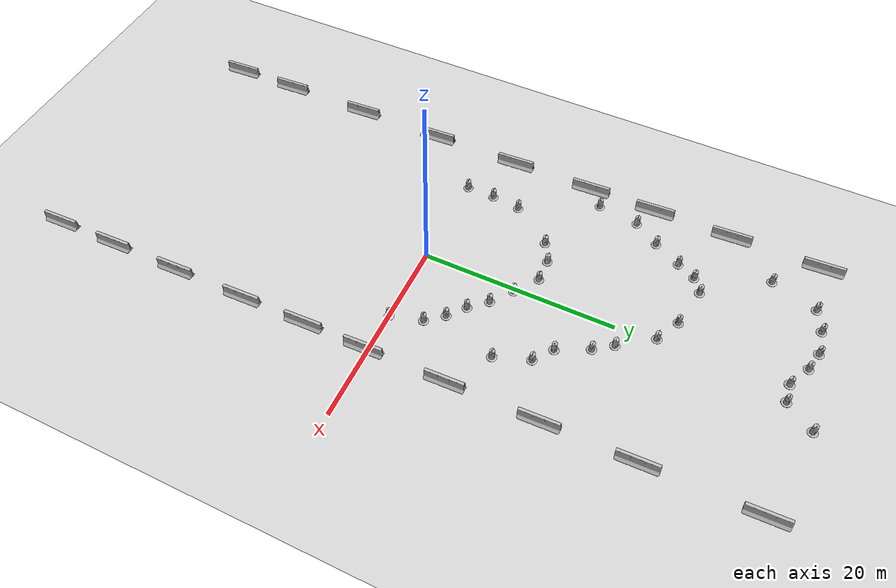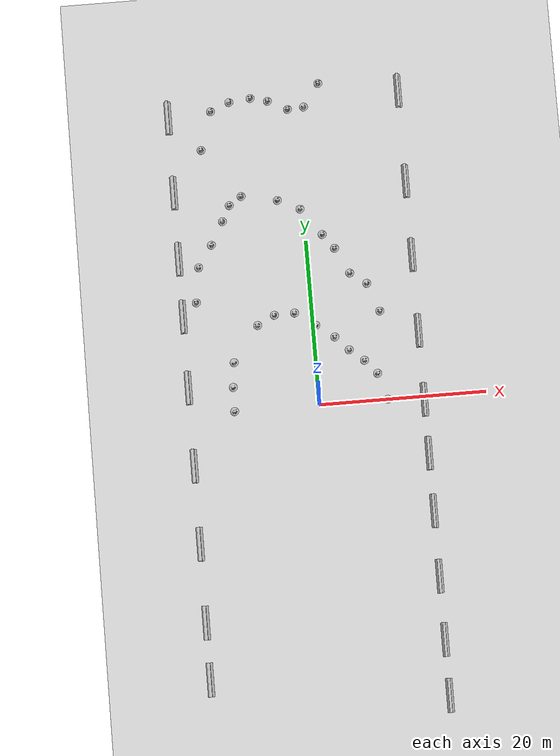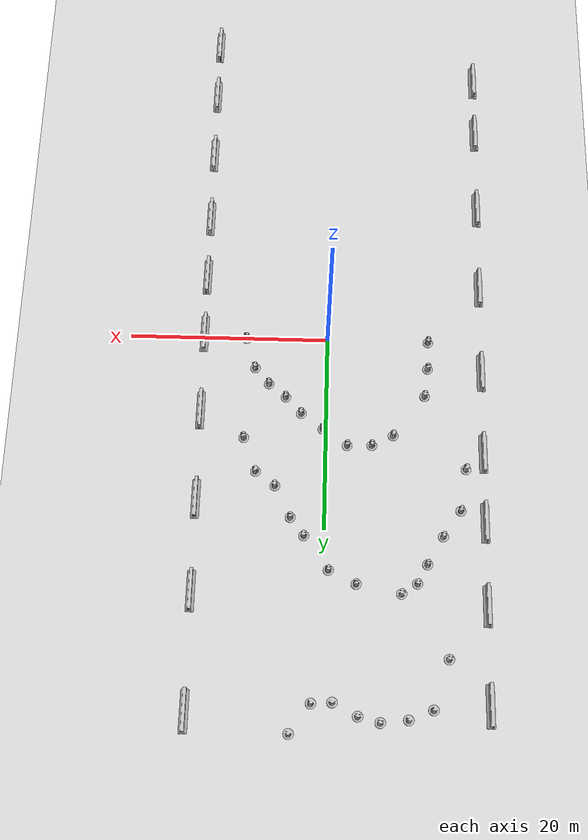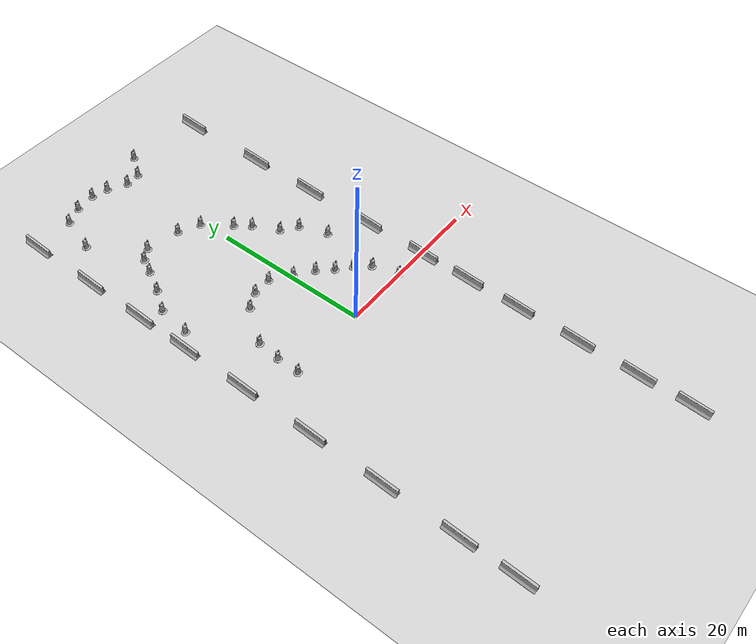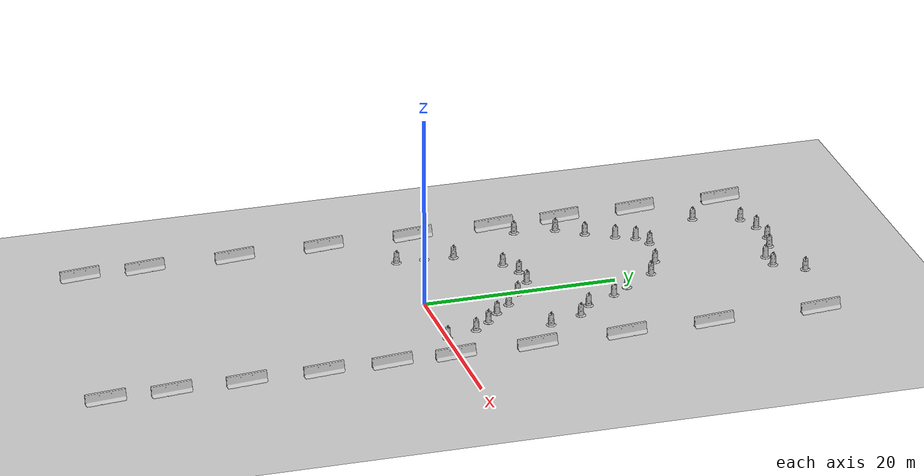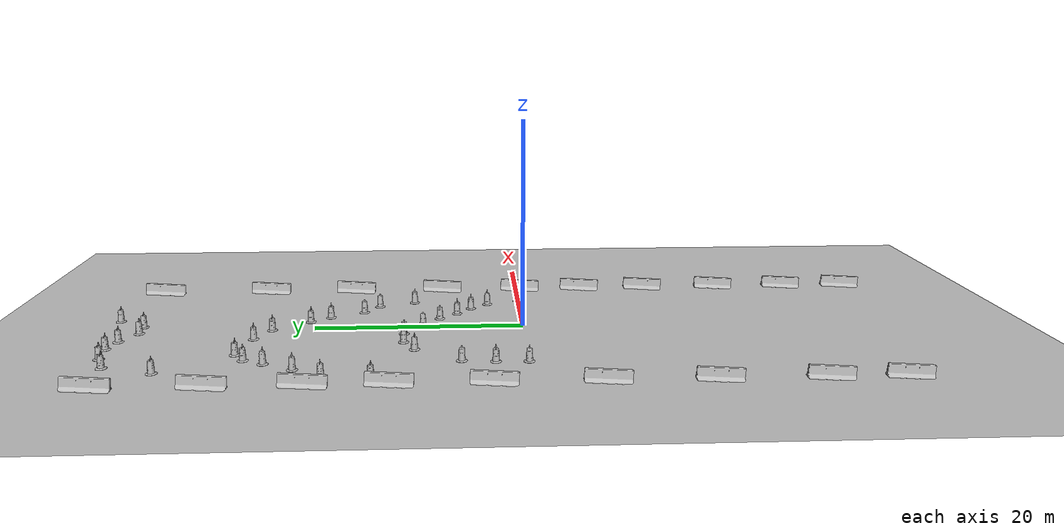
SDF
<sdf version="1.6">
 <world name="default">
  <light name="sun" type="directional">
   <pose>0 0 10 0 -0 0</pose>
   <diffuse>0.8 0.8 0.8 1</diffuse>
   <specular>0.2 0.2 0.2 1</specular>
   <attenuation>
    <range>1000</range>
    <constant>0.9</constant>
    <linear>0.01</linear>
    <quadratic>0.001</quadratic>
   </attenuation>
   <direction>-0.5 0.1 -0.9</direction>
  </light>
  <model name="ground_plane">
   <static>1</static>
   <link name="link">
    <collision name="collision">
     <geometry><plane><normal>0 0 1</normal><size>100 100</size></plane></geometry>
     <surface><friction><ode><mu>100</mu><mu2>50</mu2></ode></friction></surface>
    </collision>
    <visual name="visual">
     <cast_shadows>0</cast_shadows>
     <geometry><plane><normal>0 0 1</normal><size>100 100</size></plane></geometry>
     <material>
      <script><uri>file://media/materials/scripts/gazebo.material</uri><name>Gazebo/Grey</name></script>
     </material>
    </visual>
    <velocity_decay><linear>0</linear><angular>0</angular></velocity_decay>
   </link>
  </model>
  <physics name="default_physics" default="0" type="ode">
   <max_step_size>0.001</max_step_size>
   <real_time_factor>1</real_time_factor>
   <real_time_update_rate>1000</real_time_update_rate>
  </physics>
  <scene><ambient>0.4 0.4 0.4 1</ambient><background>0.7 0.7 0.7 1</background><shadows>1</shadows></scene>
  <spherical_coordinates>
   <surface_model>EARTH_WGS84</surface_model>
   <latitude_deg>0</latitude_deg>
   <longitude_deg>0</longitude_deg>
   <elevation>0</elevation>
   <heading_deg>0</heading_deg>
  </spherical_coordinates>
  <gravity>0 0 -9.8</gravity>
  <magnetic_field>6e-06 2.3e-05 -4.2e-05</magnetic_field>
  <atmosphere type="adiabatic"/>
  <model name="Construction Barrel">
   <link name="link">
    <inertial>
     <pose>0 0 0.4 0 -0 0</pose>
     <mass>500</mass>
     <inertia><ixx>51.2096</ixx><iyy>51.2096</iyy><izz>25</izz><ixy>0</ixy><ixz>0</ixz><iyz>0</iyz></inertia>
    </inertial>
    <collision name="collision">
     <geometry>
      <mesh><uri>model://construction_barrel/meshes/construction_barrel.dae</uri><scale>1 1 1</scale></mesh>
     </geometry>
    </collision>
    <visual name="visual">
     <geometry>
      <mesh><uri>model://construction_barrel/meshes/construction_barrel.dae</uri><scale>1 1 1</scale></mesh>
     </geometry>
    </visual>
   </link>
   <pose>8.20489 0.018212 -2e-06 -0 7e-06 -6.6e-05</pose>
  </model>
  <model name="jersey_barrier">
   <static>1</static>
   <link name="link">
    <visual name="visual">
     <geometry>
      <mesh><uri>model://jersey_barrier/meshes/jersey_barrier.dae</uri><scale>1 1 1</scale></mesh>
     </geometry>
    </visual>
    <collision name="upright">
     <pose>0 0 0.5715 0 -0 0</pose>
     <geometry><box><size>4.06542 0.3063 1.143</size></box></geometry>
    </collision>
    <collision name="base">
     <pose>0 0 0.032258 0 -0 0</pose>
     <geometry><box><size>4.06542 0.8107 0.064516</size></box></geometry>
    </collision>
    <collision name="base2">
     <pose>0 0 0.1 0 -0 0</pose>
     <geometry><box><size>4.06542 0.65 0.1</size></box></geometry>
    </collision>
    <collision name="base3">
     <pose>0 0 0.2 0 -0 0</pose>
     <geometry><box><size>4.06542 0.5 0.1</size></box></geometry>
    </collision>
    <collision name="left-angle">
     <pose>0 -0.224 0.2401 0.9 -0 0</pose>
     <geometry><box><size>4.06542 0.5 0.064516</size></box></geometry>
    </collision>
    <collision name="right-angle">
     <pose>0 0.224 0.2401 -0.9 0 0</pose>
     <geometry><box><size>4.06542 0.5 0.064516</size></box></geometry>
    </collision>
   </link>
   <pose>12.5627 -0.390061 0 -0.030847 -0.060855 1.56726</pose>
  </model>
  <model name="jersey_barrier_clone">
   <static>1</static>
   <link name="link">
    <visual name="visual">
     <geometry>
      <mesh><uri>model://jersey_barrier/meshes/jersey_barrier.dae</uri><scale>1 1 1</scale></mesh>
     </geometry>
    </visual>
    <collision name="upright">
     <pose>0 0 0.5715 0 -0 0</pose>
     <geometry><box><size>4.06542 0.3063 1.143</size></box></geometry>
    </collision>
    <collision name="base">
     <pose>0 0 0.032258 0 -0 0</pose>
     <geometry><box><size>4.06542 0.8107 0.064516</size></box></geometry>
    </collision>
    <collision name="base2">
     <pose>0 0 0.1 0 -0 0</pose>
     <geometry><box><size>4.06542 0.65 0.1</size></box></geometry>
    </collision>
    <collision name="base3">
     <pose>0 0 0.2 0 -0 0</pose>
     <geometry><box><size>4.06542 0.5 0.1</size></box></geometry>
    </collision>
    <collision name="left-angle">
     <pose>0 -0.224 0.2401 0.9 -0 0</pose>
     <geometry><box><size>4.06542 0.5 0.064516</size></box></geometry>
    </collision>
    <collision name="right-angle">
     <pose>0 0.224 0.2401 -0.9 0 0</pose>
     <geometry><box><size>4.06542 0.5 0.064516</size></box></geometry>
    </collision>
   </link>
   <pose>12.5627 -6.88089 0 -0.030847 -0.060855 1.56726</pose>
  </model>
  <model name="jersey_barrier_clone_0">
   <static>1</static>
   <link name="link">
    <visual name="visual">
     <geometry>
      <mesh><uri>model://jersey_barrier/meshes/jersey_barrier.dae</uri><scale>1 1 1</scale></mesh>
     </geometry>
    </visual>
    <collision name="upright">
     <pose>0 0 0.5715 0 -0 0</pose>
     <geometry><box><size>4.06542 0.3063 1.143</size></box></geometry>
    </collision>
    <collision name="base">
     <pose>0 0 0.032258 0 -0 0</pose>
     <geometry><box><size>4.06542 0.8107 0.064516</size></box></geometry>
    </collision>
    <collision name="base2">
     <pose>0 0 0.1 0 -0 0</pose>
     <geometry><box><size>4.06542 0.65 0.1</size></box></geometry>
    </collision>
    <collision name="base3">
     <pose>0 0 0.2 0 -0 0</pose>
     <geometry><box><size>4.06542 0.5 0.1</size></box></geometry>
    </collision>
    <collision name="left-angle">
     <pose>0 -0.224 0.2401 0.9 -0 0</pose>
     <geometry><box><size>4.06542 0.5 0.064516</size></box></geometry>
    </collision>
    <collision name="right-angle">
     <pose>0 0.224 0.2401 -0.9 0 0</pose>
     <geometry><box><size>4.06542 0.5 0.064516</size></box></geometry>
    </collision>
   </link>
   <pose>12.5627 -13.8164 0 -0.030847 -0.060855 1.56726</pose>
  </model>
  <model name="jersey_barrier_clone_1">
   <static>1</static>
   <link name="link">
    <visual name="visual">
     <geometry>
      <mesh><uri>model://jersey_barrier/meshes/jersey_barrier.dae</uri><scale>1 1 1</scale></mesh>
     </geometry>
    </visual>
    <collision name="upright">
     <pose>0 0 0.5715 0 -0 0</pose>
     <geometry><box><size>4.06542 0.3063 1.143</size></box></geometry>
    </collision>
    <collision name="base">
     <pose>0 0 0.032258 0 -0 0</pose>
     <geometry><box><size>4.06542 0.8107 0.064516</size></box></geometry>
    </collision>
    <collision name="base2">
     <pose>0 0 0.1 0 -0 0</pose>
     <geometry><box><size>4.06542 0.65 0.1</size></box></geometry>
    </collision>
    <collision name="base3">
     <pose>0 0 0.2 0 -0 0</pose>
     <geometry><box><size>4.06542 0.5 0.1</size></box></geometry>
    </collision>
    <collision name="left-angle">
     <pose>0 -0.224 0.2401 0.9 -0 0</pose>
     <geometry><box><size>4.06542 0.5 0.064516</size></box></geometry>
    </collision>
    <collision name="right-angle">
     <pose>0 0.224 0.2401 -0.9 0 0</pose>
     <geometry><box><size>4.06542 0.5 0.064516</size></box></geometry>
    </collision>
   </link>
   <pose>12.5627 8.00462 0 -0.030847 -0.060855 1.56726</pose>
  </model>
  <model name="jersey_barrier_clone_2">
   <static>1</static>
   <link name="link">
    <visual name="visual">
     <geometry>
      <mesh><uri>model://jersey_barrier/meshes/jersey_barrier.dae</uri><scale>1 1 1</scale></mesh>
     </geometry>
    </visual>
    <collision name="upright">
     <pose>0 0 0.5715 0 -0 0</pose>
     <geometry><box><size>4.06542 0.3063 1.143</size></box></geometry>
    </collision>
    <collision name="base">
     <pose>0 0 0.032258 0 -0 0</pose>
     <geometry><box><size>4.06542 0.8107 0.064516</size></box></geometry>
    </collision>
    <collision name="base2">
     <pose>0 0 0.1 0 -0 0</pose>
     <geometry><box><size>4.06542 0.65 0.1</size></box></geometry>
    </collision>
    <collision name="base3">
     <pose>0 0 0.2 0 -0 0</pose>
     <geometry><box><size>4.06542 0.5 0.1</size></box></geometry>
    </collision>
    <collision name="left-angle">
     <pose>0 -0.224 0.2401 0.9 -0 0</pose>
     <geometry><box><size>4.06542 0.5 0.064516</size></box></geometry>
    </collision>
    <collision name="right-angle">
     <pose>0 0.224 0.2401 -0.9 0 0</pose>
     <geometry><box><size>4.06542 0.5 0.064516</size></box></geometry>
    </collision>
   </link>
   <pose>12.5627 17.2633 0 -0.030847 -0.060855 1.56726</pose>
  </model>
  <model name="jersey_barrier_clone_3">
   <static>1</static>
   <link name="link">
    <visual name="visual">
     <geometry>
      <mesh><uri>model://jersey_barrier/meshes/jersey_barrier.dae</uri><scale>1 1 1</scale></mesh>
     </geometry>
    </visual>
    <collision name="upright">
     <pose>0 0 0.5715 0 -0 0</pose>
     <geometry><box><size>4.06542 0.3063 1.143</size></box></geometry>
    </collision>
    <collision name="base">
     <pose>0 0 0.032258 0 -0 0</pose>
     <geometry><box><size>4.06542 0.8107 0.064516</size></box></geometry>
    </collision>
    <collision name="base2">
     <pose>0 0 0.1 0 -0 0</pose>
     <geometry><box><size>4.06542 0.65 0.1</size></box></geometry>
    </collision>
    <collision name="base3">
     <pose>0 0 0.2 0 -0 0</pose>
     <geometry><box><size>4.06542 0.5 0.1</size></box></geometry>
    </collision>
    <collision name="left-angle">
     <pose>0 -0.224 0.2401 0.9 -0 0</pose>
     <geometry><box><size>4.06542 0.5 0.064516</size></box></geometry>
    </collision>
    <collision name="right-angle">
     <pose>0 0.224 0.2401 -0.9 0 0</pose>
     <geometry><box><size>4.06542 0.5 0.064516</size></box></geometry>
    </collision>
   </link>
   <pose>12.5627 26.3794 0 -0.030847 -0.060855 1.56726</pose>
  </model>
  <model name="jersey_barrier_clone_4">
   <static>1</static>
   <link name="link">
    <visual name="visual">
     <geometry>
      <mesh><uri>model://jersey_barrier/meshes/jersey_barrier.dae</uri><scale>1 1 1</scale></mesh>
     </geometry>
    </visual>
    <collision name="upright">
     <pose>0 0 0.5715 0 -0 0</pose>
     <geometry><box><size>4.06542 0.3063 1.143</size></box></geometry>
    </collision>
    <collision name="base">
     <pose>0 0 0.032258 0 -0 0</pose>
     <geometry><box><size>4.06542 0.8107 0.064516</size></box></geometry>
    </collision>
    <collision name="base2">
     <pose>0 0 0.1 0 -0 0</pose>
     <geometry><box><size>4.06542 0.65 0.1</size></box></geometry>
    </collision>
    <collision name="base3">
     <pose>0 0 0.2 0 -0 0</pose>
     <geometry><box><size>4.06542 0.5 0.1</size></box></geometry>
    </collision>
    <collision name="left-angle">
     <pose>0 -0.224 0.2401 0.9 -0 0</pose>
     <geometry><box><size>4.06542 0.5 0.064516</size></box></geometry>
    </collision>
    <collision name="right-angle">
     <pose>0 0.224 0.2401 -0.9 0 0</pose>
     <geometry><box><size>4.06542 0.5 0.064516</size></box></geometry>
    </collision>
   </link>
   <pose>12.5627 37.5956 0 -0.030847 -0.060855 1.56726</pose>
  </model>
  <model name="jersey_barrier_clone_5">
   <static>1</static>
   <link name="link">
    <visual name="visual">
     <geometry>
      <mesh><uri>model://jersey_barrier/meshes/jersey_barrier.dae</uri><scale>1 1 1</scale></mesh>
     </geometry>
    </visual>
    <collision name="upright">
     <pose>0 0 0.5715 0 -0 0</pose>
     <geometry><box><size>4.06542 0.3063 1.143</size></box></geometry>
    </collision>
    <collision name="base">
     <pose>0 0 0.032258 0 -0 0</pose>
     <geometry><box><size>4.06542 0.8107 0.064516</size></box></geometry>
    </collision>
    <collision name="base2">
     <pose>0 0 0.1 0 -0 0</pose>
     <geometry><box><size>4.06542 0.65 0.1</size></box></geometry>
    </collision>
    <collision name="base3">
     <pose>0 0 0.2 0 -0 0</pose>
     <geometry><box><size>4.06542 0.5 0.1</size></box></geometry>
    </collision>
    <collision name="left-angle">
     <pose>0 -0.224 0.2401 0.9 -0 0</pose>
     <geometry><box><size>4.06542 0.5 0.064516</size></box></geometry>
    </collision>
    <collision name="right-angle">
     <pose>0 0.224 0.2401 -0.9 0 0</pose>
     <geometry><box><size>4.06542 0.5 0.064516</size></box></geometry>
    </collision>
   </link>
   <pose>12.5627 -21.6319 0 -0.030847 -0.060855 1.56726</pose>
  </model>
  <model name="jersey_barrier_clone_6">
   <static>1</static>
   <link name="link">
    <visual name="visual">
     <geometry>
      <mesh><uri>model://jersey_barrier/meshes/jersey_barrier.dae</uri><scale>1 1 1</scale></mesh>
     </geometry>
    </visual>
    <collision name="upright">
     <pose>0 0 0.5715 0 -0 0</pose>
     <geometry><box><size>4.06542 0.3063 1.143</size></box></geometry>
    </collision>
    <collision name="base">
     <pose>0 0 0.032258 0 -0 0</pose>
     <geometry><box><size>4.06542 0.8107 0.064516</size></box></geometry>
    </collision>
    <collision name="base2">
     <pose>0 0 0.1 0 -0 0</pose>
     <geometry><box><size>4.06542 0.65 0.1</size></box></geometry>
    </collision>
    <collision name="base3">
     <pose>0 0 0.2 0 -0 0</pose>
     <geometry><box><size>4.06542 0.5 0.1</size></box></geometry>
    </collision>
    <collision name="left-angle">
     <pose>0 -0.224 0.2401 0.9 -0 0</pose>
     <geometry><box><size>4.06542 0.5 0.064516</size></box></geometry>
    </collision>
    <collision name="right-angle">
     <pose>0 0.224 0.2401 -0.9 0 0</pose>
     <geometry><box><size>4.06542 0.5 0.064516</size></box></geometry>
    </collision>
   </link>
   <pose>12.5627 -29.1716 0 -0.030847 -0.060855 1.56726</pose>
  </model>
  <model name="jersey_barrier_clone_7">
   <static>1</static>
   <link name="link">
    <visual name="visual">
     <geometry>
      <mesh><uri>model://jersey_barrier/meshes/jersey_barrier.dae</uri><scale>1 1 1</scale></mesh>
     </geometry>
    </visual>
    <collision name="upright">
     <pose>0 0 0.5715 0 -0 0</pose>
     <geometry><box><size>4.06542 0.3063 1.143</size></box></geometry>
    </collision>
    <collision name="base">
     <pose>0 0 0.032258 0 -0 0</pose>
     <geometry><box><size>4.06542 0.8107 0.064516</size></box></geometry>
    </collision>
    <collision name="base2">
     <pose>0 0 0.1 0 -0 0</pose>
     <geometry><box><size>4.06542 0.65 0.1</size></box></geometry>
    </collision>
    <collision name="base3">
     <pose>0 0 0.2 0 -0 0</pose>
     <geometry><box><size>4.06542 0.5 0.1</size></box></geometry>
    </collision>
    <collision name="left-angle">
     <pose>0 -0.224 0.2401 0.9 -0 0</pose>
     <geometry><box><size>4.06542 0.5 0.064516</size></box></geometry>
    </collision>
    <collision name="right-angle">
     <pose>0 0.224 0.2401 -0.9 0 0</pose>
     <geometry><box><size>4.06542 0.5 0.064516</size></box></geometry>
    </collision>
   </link>
   <pose>12.5627 -35.7766 0 -0.030847 -0.060855 1.56726</pose>
  </model>
  <model name="jersey_barrier_clone_7_clone">
   <static>1</static>
   <link name="link">
    <visual name="visual">
     <geometry>
      <mesh><uri>model://jersey_barrier/meshes/jersey_barrier.dae</uri><scale>1 1 1</scale></mesh>
     </geometry>
    </visual>
    <collision name="upright">
     <pose>0 0 0.5715 0 -0 0</pose>
     <geometry><box><size>4.06542 0.3063 1.143</size></box></geometry>
    </collision>
    <collision name="base">
     <pose>0 0 0.032258 0 -0 0</pose>
     <geometry><box><size>4.06542 0.8107 0.064516</size></box></geometry>
    </collision>
    <collision name="base2">
     <pose>0 0 0.1 0 -0 0</pose>
     <geometry><box><size>4.06542 0.65 0.1</size></box></geometry>
    </collision>
    <collision name="base3">
     <pose>0 0 0.2 0 -0 0</pose>
     <geometry><box><size>4.06542 0.5 0.1</size></box></geometry>
    </collision>
    <collision name="left-angle">
     <pose>0 -0.224 0.2401 0.9 -0 0</pose>
     <geometry><box><size>4.06542 0.5 0.064516</size></box></geometry>
    </collision>
    <collision name="right-angle">
     <pose>0 0.224 0.2401 -0.9 0 0</pose>
     <geometry><box><size>4.06542 0.5 0.064516</size></box></geometry>
    </collision>
   </link>
   <pose>-15.4934 -31.6753 0 -0.030847 -0.060855 1.56726</pose>
  </model>
  <model name="jersey_barrier_clone_7_clone_0">
   <static>1</static>
   <link name="link">
    <visual name="visual">
     <geometry>
      <mesh><uri>model://jersey_barrier/meshes/jersey_barrier.dae</uri><scale>1 1 1</scale></mesh>
     </geometry>
    </visual>
    <collision name="upright">
     <pose>0 0 0.5715 0 -0 0</pose>
     <geometry><box><size>4.06542 0.3063 1.143</size></box></geometry>
    </collision>
    <collision name="base">
     <pose>0 0 0.032258 0 -0 0</pose>
     <geometry><box><size>4.06542 0.8107 0.064516</size></box></geometry>
    </collision>
    <collision name="base2">
     <pose>0 0 0.1 0 -0 0</pose>
     <geometry><box><size>4.06542 0.65 0.1</size></box></geometry>
    </collision>
    <collision name="base3">
     <pose>0 0 0.2 0 -0 0</pose>
     <geometry><box><size>4.06542 0.5 0.1</size></box></geometry>
    </collision>
    <collision name="left-angle">
     <pose>0 -0.224 0.2401 0.9 -0 0</pose>
     <geometry><box><size>4.06542 0.5 0.064516</size></box></geometry>
    </collision>
    <collision name="right-angle">
     <pose>0 0.224 0.2401 -0.9 0 0</pose>
     <geometry><box><size>4.06542 0.5 0.064516</size></box></geometry>
    </collision>
   </link>
   <pose>-15.4934 -24.9258 0 -0.030847 -0.060855 1.56726</pose>
  </model>
  <model name="jersey_barrier_clone_7_clone_1">
   <static>1</static>
   <link name="link">
    <visual name="visual">
     <geometry>
      <mesh><uri>model://jersey_barrier/meshes/jersey_barrier.dae</uri><scale>1 1 1</scale></mesh>
     </geometry>
    </visual>
    <collision name="upright">
     <pose>0 0 0.5715 0 -0 0</pose>
     <geometry><box><size>4.06542 0.3063 1.143</size></box></geometry>
    </collision>
    <collision name="base">
     <pose>0 0 0.032258 0 -0 0</pose>
     <geometry><box><size>4.06542 0.8107 0.064516</size></box></geometry>
    </collision>
    <collision name="base2">
     <pose>0 0 0.1 0 -0 0</pose>
     <geometry><box><size>4.06542 0.65 0.1</size></box></geometry>
    </collision>
    <collision name="base3">
     <pose>0 0 0.2 0 -0 0</pose>
     <geometry><box><size>4.06542 0.5 0.1</size></box></geometry>
    </collision>
    <collision name="left-angle">
     <pose>0 -0.224 0.2401 0.9 -0 0</pose>
     <geometry><box><size>4.06542 0.5 0.064516</size></box></geometry>
    </collision>
    <collision name="right-angle">
     <pose>0 0.224 0.2401 -0.9 0 0</pose>
     <geometry><box><size>4.06542 0.5 0.064516</size></box></geometry>
    </collision>
   </link>
   <pose>-15.4934 -15.5389 0 -0.030847 -0.060855 1.56726</pose>
  </model>
  <model name="jersey_barrier_clone_7_clone_2">
   <static>1</static>
   <link name="link">
    <visual name="visual">
     <geometry>
      <mesh><uri>model://jersey_barrier/meshes/jersey_barrier.dae</uri><scale>1 1 1</scale></mesh>
     </geometry>
    </visual>
    <collision name="upright">
     <pose>0 0 0.5715 0 -0 0</pose>
     <geometry><box><size>4.06542 0.3063 1.143</size></box></geometry>
    </collision>
    <collision name="base">
     <pose>0 0 0.032258 0 -0 0</pose>
     <geometry><box><size>4.06542 0.8107 0.064516</size></box></geometry>
    </collision>
    <collision name="base2">
     <pose>0 0 0.1 0 -0 0</pose>
     <geometry><box><size>4.06542 0.65 0.1</size></box></geometry>
    </collision>
    <collision name="base3">
     <pose>0 0 0.2 0 -0 0</pose>
     <geometry><box><size>4.06542 0.5 0.1</size></box></geometry>
    </collision>
    <collision name="left-angle">
     <pose>0 -0.224 0.2401 0.9 -0 0</pose>
     <geometry><box><size>4.06542 0.5 0.064516</size></box></geometry>
    </collision>
    <collision name="right-angle">
     <pose>0 0.224 0.2401 -0.9 0 0</pose>
     <geometry><box><size>4.06542 0.5 0.064516</size></box></geometry>
    </collision>
   </link>
   <pose>-15.4934 -6.16813 0 -0.030847 -0.060855 1.56726</pose>
  </model>
  <model name="jersey_barrier_clone_7_clone_3">
   <static>1</static>
   <link name="link">
    <visual name="visual">
     <geometry>
      <mesh><uri>model://jersey_barrier/meshes/jersey_barrier.dae</uri><scale>1 1 1</scale></mesh>
     </geometry>
    </visual>
    <collision name="upright">
     <pose>0 0 0.5715 0 -0 0</pose>
     <geometry><box><size>4.06542 0.3063 1.143</size></box></geometry>
    </collision>
    <collision name="base">
     <pose>0 0 0.032258 0 -0 0</pose>
     <geometry><box><size>4.06542 0.8107 0.064516</size></box></geometry>
    </collision>
    <collision name="base2">
     <pose>0 0 0.1 0 -0 0</pose>
     <geometry><box><size>4.06542 0.65 0.1</size></box></geometry>
    </collision>
    <collision name="base3">
     <pose>0 0 0.2 0 -0 0</pose>
     <geometry><box><size>4.06542 0.5 0.1</size></box></geometry>
    </collision>
    <collision name="left-angle">
     <pose>0 -0.224 0.2401 0.9 -0 0</pose>
     <geometry><box><size>4.06542 0.5 0.064516</size></box></geometry>
    </collision>
    <collision name="right-angle">
     <pose>0 0.224 0.2401 -0.9 0 0</pose>
     <geometry><box><size>4.06542 0.5 0.064516</size></box></geometry>
    </collision>
   </link>
   <pose>-15.4934 3.27965 0 -0.030847 -0.060855 1.56726</pose>
  </model>
  <model name="jersey_barrier_clone_7_clone_4">
   <static>1</static>
   <link name="link">
    <visual name="visual">
     <geometry>
      <mesh><uri>model://jersey_barrier/meshes/jersey_barrier.dae</uri><scale>1 1 1</scale></mesh>
     </geometry>
    </visual>
    <collision name="upright">
     <pose>0 0 0.5715 0 -0 0</pose>
     <geometry><box><size>4.06542 0.3063 1.143</size></box></geometry>
    </collision>
    <collision name="base">
     <pose>0 0 0.032258 0 -0 0</pose>
     <geometry><box><size>4.06542 0.8107 0.064516</size></box></geometry>
    </collision>
    <collision name="base2">
     <pose>0 0 0.1 0 -0 0</pose>
     <geometry><box><size>4.06542 0.65 0.1</size></box></geometry>
    </collision>
    <collision name="base3">
     <pose>0 0 0.2 0 -0 0</pose>
     <geometry><box><size>4.06542 0.5 0.1</size></box></geometry>
    </collision>
    <collision name="left-angle">
     <pose>0 -0.224 0.2401 0.9 -0 0</pose>
     <geometry><box><size>4.06542 0.5 0.064516</size></box></geometry>
    </collision>
    <collision name="right-angle">
     <pose>0 0.224 0.2401 -0.9 0 0</pose>
     <geometry><box><size>4.06542 0.5 0.064516</size></box></geometry>
    </collision>
   </link>
   <pose>-15.4934 19 0 -0.030847 -0.060855 1.56726</pose>
  </model>
  <model name="jersey_barrier_clone_7_clone_5">
   <static>1</static>
   <link name="link">
    <visual name="visual">
     <geometry>
      <mesh><uri>model://jersey_barrier/meshes/jersey_barrier.dae</uri><scale>1 1 1</scale></mesh>
     </geometry>
    </visual>
    <collision name="upright">
     <pose>0 0 0.5715 0 -0 0</pose>
     <geometry><box><size>4.06542 0.3063 1.143</size></box></geometry>
    </collision>
    <collision name="base">
     <pose>0 0 0.032258 0 -0 0</pose>
     <geometry><box><size>4.06542 0.8107 0.064516</size></box></geometry>
    </collision>
    <collision name="base2">
     <pose>0 0 0.1 0 -0 0</pose>
     <geometry><box><size>4.06542 0.65 0.1</size></box></geometry>
    </collision>
    <collision name="base3">
     <pose>0 0 0.2 0 -0 0</pose>
     <geometry><box><size>4.06542 0.5 0.1</size></box></geometry>
    </collision>
    <collision name="left-angle">
     <pose>0 -0.224 0.2401 0.9 -0 0</pose>
     <geometry><box><size>4.06542 0.5 0.064516</size></box></geometry>
    </collision>
    <collision name="right-angle">
     <pose>0 0.224 0.2401 -0.9 0 0</pose>
     <geometry><box><size>4.06542 0.5 0.064516</size></box></geometry>
    </collision>
   </link>
   <pose>-15.4934 11.9404 0 -0.030847 -0.060855 1.56726</pose>
  </model>
  <model name="jersey_barrier_clone_7_clone_6">
   <static>1</static>
   <link name="link">
    <visual name="visual">
     <geometry>
      <mesh><uri>model://jersey_barrier/meshes/jersey_barrier.dae</uri><scale>1 1 1</scale></mesh>
     </geometry>
    </visual>
    <collision name="upright">
     <pose>0 0 0.5715 0 -0 0</pose>
     <geometry><box><size>4.06542 0.3063 1.143</size></box></geometry>
    </collision>
    <collision name="base">
     <pose>0 0 0.032258 0 -0 0</pose>
     <geometry><box><size>4.06542 0.8107 0.064516</size></box></geometry>
    </collision>
    <collision name="base2">
     <pose>0 0 0.1 0 -0 0</pose>
     <geometry><box><size>4.06542 0.65 0.1</size></box></geometry>
    </collision>
    <collision name="base3">
     <pose>0 0 0.2 0 -0 0</pose>
     <geometry><box><size>4.06542 0.5 0.1</size></box></geometry>
    </collision>
    <collision name="left-angle">
     <pose>0 -0.224 0.2401 0.9 -0 0</pose>
     <geometry><box><size>4.06542 0.5 0.064516</size></box></geometry>
    </collision>
    <collision name="right-angle">
     <pose>0 0.224 0.2401 -0.9 0 0</pose>
     <geometry><box><size>4.06542 0.5 0.064516</size></box></geometry>
    </collision>
   </link>
   <pose>-15.4934 36.4426 0 -0.030847 -0.060855 1.56726</pose>
  </model>
  <model name="jersey_barrier_clone_7_clone_7">
   <static>1</static>
   <link name="link">
    <visual name="visual">
     <geometry>
      <mesh><uri>model://jersey_barrier/meshes/jersey_barrier.dae</uri><scale>1 1 1</scale></mesh>
     </geometry>
    </visual>
    <collision name="upright">
     <pose>0 0 0.5715 0 -0 0</pose>
     <geometry><box><size>4.06542 0.3063 1.143</size></box></geometry>
    </collision>
    <collision name="base">
     <pose>0 0 0.032258 0 -0 0</pose>
     <geometry><box><size>4.06542 0.8107 0.064516</size></box></geometry>
    </collision>
    <collision name="base2">
     <pose>0 0 0.1 0 -0 0</pose>
     <geometry><box><size>4.06542 0.65 0.1</size></box></geometry>
    </collision>
    <collision name="base3">
     <pose>0 0 0.2 0 -0 0</pose>
     <geometry><box><size>4.06542 0.5 0.1</size></box></geometry>
    </collision>
    <collision name="left-angle">
     <pose>0 -0.224 0.2401 0.9 -0 0</pose>
     <geometry><box><size>4.06542 0.5 0.064516</size></box></geometry>
    </collision>
    <collision name="right-angle">
     <pose>0 0.224 0.2401 -0.9 0 0</pose>
     <geometry><box><size>4.06542 0.5 0.064516</size></box></geometry>
    </collision>
   </link>
   <pose>-15.4934 27.1496 0 -0.030847 -0.060855 1.56726</pose>
  </model>
  <model name="Construction Barrel_clone">
   <link name="link">
    <inertial>
     <pose>0 0 0.4 0 -0 0</pose>
     <mass>500</mass>
     <inertia><ixx>51.2096</ixx><iyy>51.2096</iyy><izz>25</izz><ixy>0</ixy><ixz>0</ixz><iyz>0</iyz></inertia>
    </inertial>
    <collision name="collision">
     <geometry>
      <mesh><uri>model://construction_barrel/meshes/construction_barrel.dae</uri><scale>1 1 1</scale></mesh>
     </geometry>
    </collision>
    <visual name="visual">
     <geometry>
      <mesh><uri>model://construction_barrel/meshes/construction_barrel.dae</uri><scale>1 1 1</scale></mesh>
     </geometry>
    </visual>
   </link>
   <pose>7.24963 3.24428 0 0 0 -7.8e-05</pose>
  </model>
  <model name="Construction Barrel_clone_0">
   <link name="link">
    <inertial>
     <pose>0 0 0.4 0 -0 0</pose>
     <mass>500</mass>
     <inertia><ixx>51.2096</ixx><iyy>51.2096</iyy><izz>25</izz><ixy>0</ixy><ixz>0</ixz><iyz>0</iyz></inertia>
    </inertial>
    <collision name="collision">
     <geometry>
      <mesh><uri>model://construction_barrel/meshes/construction_barrel.dae</uri><scale>1 1 1</scale></mesh>
     </geometry>
    </collision>
    <visual name="visual">
     <geometry>
      <mesh><uri>model://construction_barrel/meshes/construction_barrel.dae</uri><scale>1 1 1</scale></mesh>
     </geometry>
    </visual>
   </link>
   <pose>5.80408 4.95055 -1e-06 3e-06 -2e-06 -7e-05</pose>
  </model>
  <model name="Construction Barrel_clone_1">
   <link name="link">
    <inertial>
     <pose>0 0 0.4 0 -0 0</pose>
     <mass>500</mass>
     <inertia><ixx>51.2096</ixx><iyy>51.2096</iyy><izz>25</izz><ixy>0</ixy><ixz>0</ixz><iyz>0</iyz></inertia>
    </inertial>
    <collision name="collision">
     <geometry>
      <mesh><uri>model://construction_barrel/meshes/construction_barrel.dae</uri><scale>1 1 1</scale></mesh>
     </geometry>
    </collision>
    <visual name="visual">
     <geometry>
      <mesh><uri>model://construction_barrel/meshes/construction_barrel.dae</uri><scale>1 1 1</scale></mesh>
     </geometry>
    </visual>
   </link>
   <pose>4.08159 6.35633 0 1e-06 1e-06 -7.6e-05</pose>
  </model>
  <model name="Construction Barrel_clone_2">
   <link name="link">
    <inertial>
     <pose>0 0 0.4 0 -0 0</pose>
     <mass>500</mass>
     <inertia><ixx>51.2096</ixx><iyy>51.2096</iyy><izz>25</izz><ixy>0</ixy><ixz>0</ixz><iyz>0</iyz></inertia>
    </inertial>
    <collision name="collision">
     <geometry>
      <mesh><uri>model://construction_barrel/meshes/construction_barrel.dae</uri><scale>1 1 1</scale></mesh>
     </geometry>
    </collision>
    <visual name="visual">
     <geometry>
      <mesh><uri>model://construction_barrel/meshes/construction_barrel.dae</uri><scale>1 1 1</scale></mesh>
     </geometry>
    </visual>
   </link>
   <pose>2.49416 8.06219 -1e-06 3e-06 -2e-06 -6.8e-05</pose>
  </model>
  <model name="Construction Barrel_clone_3">
   <link name="link">
    <inertial>
     <pose>0 0 0.4 0 -0 0</pose>
     <mass>500</mass>
     <inertia><ixx>51.2096</ixx><iyy>51.2096</iyy><izz>25</izz><ixy>0</ixy><ixz>0</ixz><iyz>0</iyz></inertia>
    </inertial>
    <collision name="collision">
     <geometry>
      <mesh><uri>model://construction_barrel/meshes/construction_barrel.dae</uri><scale>1 1 1</scale></mesh>
     </geometry>
    </collision>
    <visual name="visual">
     <geometry>
      <mesh><uri>model://construction_barrel/meshes/construction_barrel.dae</uri><scale>1 1 1</scale></mesh>
     </geometry>
    </visual>
   </link>
   <pose>0.332527 9.6596 0 0 0 -6.2e-05</pose>
  </model>
  <model name="Construction Barrel_clone_4">
   <link name="link">
    <inertial>
     <pose>0 0 0.4 0 -0 0</pose>
     <mass>500</mass>
     <inertia><ixx>51.2096</ixx><iyy>51.2096</iyy><izz>25</izz><ixy>0</ixy><ixz>0</ixz><iyz>0</iyz></inertia>
    </inertial>
    <collision name="collision">
     <geometry>
      <mesh><uri>model://construction_barrel/meshes/construction_barrel.dae</uri><scale>1 1 1</scale></mesh>
     </geometry>
    </collision>
    <visual name="visual">
     <geometry>
      <mesh><uri>model://construction_barrel/meshes/construction_barrel.dae</uri><scale>1 1 1</scale></mesh>
     </geometry>
    </visual>
   </link>
   <pose>-2.09688 11.3571 0 0 0 -6.3e-05</pose>
  </model>
  <model name="Construction Barrel_clone_5">
   <link name="link">
    <inertial>
     <pose>0 0 0.4 0 -0 0</pose>
     <mass>500</mass>
     <inertia><ixx>51.2096</ixx><iyy>51.2096</iyy><izz>25</izz><ixy>0</ixy><ixz>0</ixz><iyz>0</iyz></inertia>
    </inertial>
    <collision name="collision">
     <geometry>
      <mesh><uri>model://construction_barrel/meshes/construction_barrel.dae</uri><scale>1 1 1</scale></mesh>
     </geometry>
    </collision>
    <visual name="visual">
     <geometry>
      <mesh><uri>model://construction_barrel/meshes/construction_barrel.dae</uri><scale>1 1 1</scale></mesh>
     </geometry>
    </visual>
   </link>
   <pose>-4.5402 11.2852 -2e-06 -0 7e-06 -5.9e-05</pose>
  </model>
  <model name="Construction Barrel_clone_6">
   <link name="link">
    <inertial>
     <pose>0 0 0.4 0 -0 0</pose>
     <mass>500</mass>
     <inertia><ixx>51.2096</ixx><iyy>51.2096</iyy><izz>25</izz><ixy>0</ixy><ixz>0</ixz><iyz>0</iyz></inertia>
    </inertial>
    <collision name="collision">
     <geometry>
      <mesh><uri>model://construction_barrel/meshes/construction_barrel.dae</uri><scale>1 1 1</scale></mesh>
     </geometry>
    </collision>
    <visual name="visual">
     <geometry>
      <mesh><uri>model://construction_barrel/meshes/construction_barrel.dae</uri><scale>1 1 1</scale></mesh>
     </geometry>
    </visual>
   </link>
   <pose>-6.6321 10.2018 -2e-06 7e-06 -4e-06 -5.8e-05</pose>
  </model>
  <model name="Construction Barrel_clone_7">
   <link name="link">
    <inertial>
     <pose>0 0 0.4 0 -0 0</pose>
     <mass>500</mass>
     <inertia><ixx>51.2096</ixx><iyy>51.2096</iyy><izz>25</izz><ixy>0</ixy><ixz>0</ixz><iyz>0</iyz></inertia>
    </inertial>
    <collision name="collision">
     <geometry>
      <mesh><uri>model://construction_barrel/meshes/construction_barrel.dae</uri><scale>1 1 1</scale></mesh>
     </geometry>
    </collision>
    <visual name="visual">
     <geometry>
      <mesh><uri>model://construction_barrel/meshes/construction_barrel.dae</uri><scale>1 1 1</scale></mesh>
     </geometry>
    </visual>
   </link>
   <pose>-9.79643 5.92486 -2e-06 0 7e-06 -6.2e-05</pose>
  </model>
  <model name="Construction Barrel_clone_8">
   <link name="link">
    <inertial>
     <pose>0 0 0.4 0 -0 0</pose>
     <mass>500</mass>
     <inertia><ixx>51.2096</ixx><iyy>51.2096</iyy><izz>25</izz><ixy>0</ixy><ixz>0</ixz><iyz>0</iyz></inertia>
    </inertial>
    <collision name="collision">
     <geometry>
      <mesh><uri>model://construction_barrel/meshes/construction_barrel.dae</uri><scale>1 1 1</scale></mesh>
     </geometry>
    </collision>
    <visual name="visual">
     <geometry>
      <mesh><uri>model://construction_barrel/meshes/construction_barrel.dae</uri><scale>1 1 1</scale></mesh>
     </geometry>
    </visual>
   </link>
   <pose>-10.1331 2.94106 -4e-06 -5e-06 -7e-06 -6.3e-05</pose>
  </model>
  <model name="Construction Barrel_clone_9">
   <link name="link">
    <inertial>
     <pose>0 0 0.4 0 -0 0</pose>
     <mass>500</mass>
     <inertia><ixx>51.2096</ixx><iyy>51.2096</iyy><izz>25</izz><ixy>0</ixy><ixz>0</ixz><iyz>0</iyz></inertia>
    </inertial>
    <collision name="collision">
     <geometry>
      <mesh><uri>model://construction_barrel/meshes/construction_barrel.dae</uri><scale>1 1 1</scale></mesh>
     </geometry>
    </collision>
    <visual name="visual">
     <geometry>
      <mesh><uri>model://construction_barrel/meshes/construction_barrel.dae</uri><scale>1 1 1</scale></mesh>
     </geometry>
    </visual>
   </link>
   <pose>-10.1903 0.006399 -1e-06 -0 5e-06 -6e-05</pose>
  </model>
  <model name="Construction Barrel_clone_10">
   <link name="link">
    <inertial>
     <pose>0 0 0.4 0 -0 0</pose>
     <mass>500</mass>
     <inertia><ixx>51.2096</ixx><iyy>51.2096</iyy><izz>25</izz><ixy>0</ixy><ixz>0</ixz><iyz>0</iyz></inertia>
    </inertial>
    <collision name="collision">
     <geometry>
      <mesh><uri>model://construction_barrel/meshes/construction_barrel.dae</uri><scale>1 1 1</scale></mesh>
     </geometry>
    </collision>
    <visual name="visual">
     <geometry>
      <mesh><uri>model://construction_barrel/meshes/construction_barrel.dae</uri><scale>1 1 1</scale></mesh>
     </geometry>
    </visual>
   </link>
   <pose>-13.7735 13.5533 -1e-06 -8e-06 -2e-06 -5.9e-05</pose>
  </model>
  <model name="Construction Barrel_clone_11">
   <link name="link">
    <inertial>
     <pose>0 0 0.4 0 -0 0</pose>
     <mass>500</mass>
     <inertia><ixx>51.2096</ixx><iyy>51.2096</iyy><izz>25</izz><ixy>0</ixy><ixz>0</ixz><iyz>0</iyz></inertia>
    </inertial>
    <collision name="collision">
     <geometry>
      <mesh><uri>model://construction_barrel/meshes/construction_barrel.dae</uri><scale>1 1 1</scale></mesh>
     </geometry>
    </collision>
    <visual name="visual">
     <geometry>
      <mesh><uri>model://construction_barrel/meshes/construction_barrel.dae</uri><scale>1 1 1</scale></mesh>
     </geometry>
    </visual>
   </link>
   <pose>-13.1769 17.8069 -1e-06 3e-06 -0 -5.5e-05</pose>
  </model>
  <model name="Construction Barrel_clone_12">
   <link name="link">
    <inertial>
     <pose>0 0 0.4 0 -0 0</pose>
     <mass>500</mass>
     <inertia><ixx>51.2096</ixx><iyy>51.2096</iyy><izz>25</izz><ixy>0</ixy><ixz>0</ixz><iyz>0</iyz></inertia>
    </inertial>
    <collision name="collision">
     <geometry>
      <mesh><uri>model://construction_barrel/meshes/construction_barrel.dae</uri><scale>1 1 1</scale></mesh>
     </geometry>
    </collision>
    <visual name="visual">
     <geometry>
      <mesh><uri>model://construction_barrel/meshes/construction_barrel.dae</uri><scale>1 1 1</scale></mesh>
     </geometry>
    </visual>
   </link>
   <pose>-11.4388 20.4389 -1e-06 3e-06 -0 -5.7e-05</pose>
  </model>
  <model name="Construction Barrel_clone_13">
   <link name="link">
    <inertial>
     <pose>0 0 0.4 0 -0 0</pose>
     <mass>500</mass>
     <inertia><ixx>51.2096</ixx><iyy>51.2096</iyy><izz>25</izz><ixy>0</ixy><ixz>0</ixz><iyz>0</iyz></inertia>
    </inertial>
    <collision name="collision">
     <geometry>
      <mesh><uri>model://construction_barrel/meshes/construction_barrel.dae</uri><scale>1 1 1</scale></mesh>
     </geometry>
    </collision>
    <visual name="visual">
     <geometry>
      <mesh><uri>model://construction_barrel/meshes/construction_barrel.dae</uri><scale>1 1 1</scale></mesh>
     </geometry>
    </visual>
   </link>
   <pose>-9.89747 23.2169 -1e-06 -3e-06 -1e-06 -5.7e-05</pose>
  </model>
  <model name="Construction Barrel_clone_14">
   <link name="link">
    <inertial>
     <pose>0 0 0.4 0 -0 0</pose>
     <mass>500</mass>
     <inertia><ixx>51.2096</ixx><iyy>51.2096</iyy><izz>25</izz><ixy>0</ixy><ixz>0</ixz><iyz>0</iyz></inertia>
    </inertial>
    <collision name="collision">
     <geometry>
      <mesh><uri>model://construction_barrel/meshes/construction_barrel.dae</uri><scale>1 1 1</scale></mesh>
     </geometry>
    </collision>
    <visual name="visual">
     <geometry>
      <mesh><uri>model://construction_barrel/meshes/construction_barrel.dae</uri><scale>1 1 1</scale></mesh>
     </geometry>
    </visual>
   </link>
   <pose>-8.92096 25.117 -1e-06 3e-06 7e-06 -5.5e-05</pose>
  </model>
  <model name="Construction Barrel_clone_15">
   <link name="link">
    <inertial>
     <pose>0 0 0.4 0 -0 0</pose>
     <mass>500</mass>
     <inertia><ixx>51.2096</ixx><iyy>51.2096</iyy><izz>25</izz><ixy>0</ixy><ixz>0</ixz><iyz>0</iyz></inertia>
    </inertial>
    <collision name="collision">
     <geometry>
      <mesh><uri>model://construction_barrel/meshes/construction_barrel.dae</uri><scale>1 1 1</scale></mesh>
     </geometry>
    </collision>
    <visual name="visual">
     <geometry>
      <mesh><uri>model://construction_barrel/meshes/construction_barrel.dae</uri><scale>1 1 1</scale></mesh>
     </geometry>
    </visual>
   </link>
   <pose>8.13671 10.7623 -1e-06 3e-06 -2e-06 -5.7e-05</pose>
  </model>
  <model name="Construction Barrel_clone_16">
   <link name="link">
    <inertial>
     <pose>0 0 0.4 0 -0 0</pose>
     <mass>500</mass>
     <inertia><ixx>51.2096</ixx><iyy>51.2096</iyy><izz>25</izz><ixy>0</ixy><ixz>0</ixz><iyz>0</iyz></inertia>
    </inertial>
    <collision name="collision">
     <geometry>
      <mesh><uri>model://construction_barrel/meshes/construction_barrel.dae</uri><scale>1 1 1</scale></mesh>
     </geometry>
    </collision>
    <visual name="visual">
     <geometry>
      <mesh><uri>model://construction_barrel/meshes/construction_barrel.dae</uri><scale>1 1 1</scale></mesh>
     </geometry>
    </visual>
   </link>
   <pose>6.84704 14.2667 0 0 0 -5.6e-05</pose>
  </model>
  <model name="Construction Barrel_clone_17">
   <link name="link">
    <inertial>
     <pose>0 0 0.4 0 -0 0</pose>
     <mass>500</mass>
     <inertia><ixx>51.2096</ixx><iyy>51.2096</iyy><izz>25</izz><ixy>0</ixy><ixz>0</ixz><iyz>0</iyz></inertia>
    </inertial>
    <collision name="collision">
     <geometry>
      <mesh><uri>model://construction_barrel/meshes/construction_barrel.dae</uri><scale>1 1 1</scale></mesh>
     </geometry>
    </collision>
    <visual name="visual">
     <geometry>
      <mesh><uri>model://construction_barrel/meshes/construction_barrel.dae</uri><scale>1 1 1</scale></mesh>
     </geometry>
    </visual>
   </link>
   <pose>4.90473 15.6911 0 0 0 -6.6e-05</pose>
  </model>
  <model name="Construction Barrel_clone_18">
   <link name="link">
    <inertial>
     <pose>0 0 0.4 0 -0 0</pose>
     <mass>500</mass>
     <inertia><ixx>51.2096</ixx><iyy>51.2096</iyy><izz>25</izz><ixy>0</ixy><ixz>0</ixz><iyz>0</iyz></inertia>
    </inertial>
    <collision name="collision">
     <geometry>
      <mesh><uri>model://construction_barrel/meshes/construction_barrel.dae</uri><scale>1 1 1</scale></mesh>
     </geometry>
    </collision>
    <visual name="visual">
     <geometry>
      <mesh><uri>model://construction_barrel/meshes/construction_barrel.dae</uri><scale>1 1 1</scale></mesh>
     </geometry>
    </visual>
   </link>
   <pose>3.32981 18.8567 -1e-06 3e-06 -2e-06 -5.6e-05</pose>
  </model>
  <model name="Construction Barrel_clone_19">
   <link name="link">
    <inertial>
     <pose>0 0 0.4 0 -0 0</pose>
     <mass>500</mass>
     <inertia><ixx>51.2096</ixx><iyy>51.2096</iyy><izz>25</izz><ixy>0</ixy><ixz>0</ixz><iyz>0</iyz></inertia>
    </inertial>
    <collision name="collision">
     <geometry>
      <mesh><uri>model://construction_barrel/meshes/construction_barrel.dae</uri><scale>1 1 1</scale></mesh>
     </geometry>
    </collision>
    <visual name="visual">
     <geometry>
      <mesh><uri>model://construction_barrel/meshes/construction_barrel.dae</uri><scale>1 1 1</scale></mesh>
     </geometry>
    </visual>
   </link>
   <pose>1.97456 20.6697 -1e-06 -0 5e-06 -5.3e-05</pose>
  </model>
  <model name="Construction Barrel_clone_20">
   <link name="link">
    <inertial>
     <pose>0 0 0.4 0 -0 0</pose>
     <mass>500</mass>
     <inertia><ixx>51.2096</ixx><iyy>51.2096</iyy><izz>25</izz><ixy>0</ixy><ixz>0</ixz><iyz>0</iyz></inertia>
    </inertial>
    <collision name="collision">
     <geometry>
      <mesh><uri>model://construction_barrel/meshes/construction_barrel.dae</uri><scale>1 1 1</scale></mesh>
     </geometry>
    </collision>
    <visual name="visual">
     <geometry>
      <mesh><uri>model://construction_barrel/meshes/construction_barrel.dae</uri><scale>1 1 1</scale></mesh>
     </geometry>
    </visual>
   </link>
   <pose>-0.437975 24 -1e-06 -0 5e-06 -5.3e-05</pose>
  </model>
  <model name="Construction Barrel_clone_21">
   <link name="link">
    <inertial>
     <pose>0 0 0.4 0 -0 0</pose>
     <mass>500</mass>
     <inertia><ixx>51.2096</ixx><iyy>51.2096</iyy><izz>25</izz><ixy>0</ixy><ixz>0</ixz><iyz>0</iyz></inertia>
    </inertial>
    <collision name="collision">
     <geometry>
      <mesh><uri>model://construction_barrel/meshes/construction_barrel.dae</uri><scale>1 1 1</scale></mesh>
     </geometry>
    </collision>
    <visual name="visual">
     <geometry>
      <mesh><uri>model://construction_barrel/meshes/construction_barrel.dae</uri><scale>1 1 1</scale></mesh>
     </geometry>
    </visual>
   </link>
   <pose>-3.08651 25.2878 -1e-06 3e-06 -2e-06 -5.4e-05</pose>
  </model>
  <model name="Construction Barrel_clone_22">
   <link name="link">
    <inertial>
     <pose>0 0 0.4 0 -0 0</pose>
     <mass>500</mass>
     <inertia><ixx>51.2096</ixx><iyy>51.2096</iyy><izz>25</izz><ixy>0</ixy><ixz>0</ixz><iyz>0</iyz></inertia>
    </inertial>
    <collision name="collision">
     <geometry>
      <mesh><uri>model://construction_barrel/meshes/construction_barrel.dae</uri><scale>1 1 1</scale></mesh>
     </geometry>
    </collision>
    <visual name="visual">
     <geometry>
      <mesh><uri>model://construction_barrel/meshes/construction_barrel.dae</uri><scale>1 1 1</scale></mesh>
     </geometry>
    </visual>
   </link>
   <pose>-7.40781 26.1252 0 0 0 -5.1e-05</pose>
  </model>
  <model name="Construction Barrel_clone_23">
   <link name="link">
    <inertial>
     <pose>0 0 0.4 0 -0 0</pose>
     <mass>500</mass>
     <inertia><ixx>51.2096</ixx><iyy>51.2096</iyy><izz>25</izz><ixy>0</ixy><ixz>0</ixz><iyz>0</iyz></inertia>
    </inertial>
    <collision name="collision">
     <geometry>
      <mesh><uri>model://construction_barrel/meshes/construction_barrel.dae</uri><scale>1 1 1</scale></mesh>
     </geometry>
    </collision>
    <visual name="visual">
     <geometry>
      <mesh><uri>model://construction_barrel/meshes/construction_barrel.dae</uri><scale>1 1 1</scale></mesh>
     </geometry>
    </visual>
   </link>
   <pose>-11.8031 32.1959 -1e-06 0 5e-06 -5.2e-05</pose>
  </model>
  <model name="Construction Barrel_clone_24">
   <link name="link">
    <inertial>
     <pose>0 0 0.4 0 -0 0</pose>
     <mass>500</mass>
     <inertia><ixx>51.2096</ixx><iyy>51.2096</iyy><izz>25</izz><ixy>0</ixy><ixz>0</ixz><iyz>0</iyz></inertia>
    </inertial>
    <collision name="collision">
     <geometry>
      <mesh><uri>model://construction_barrel/meshes/construction_barrel.dae</uri><scale>1 1 1</scale></mesh>
     </geometry>
    </collision>
    <visual name="visual">
     <geometry>
      <mesh><uri>model://construction_barrel/meshes/construction_barrel.dae</uri><scale>1 1 1</scale></mesh>
     </geometry>
    </visual>
   </link>
   <pose>-10.2987 36.8823 -1e-06 -3e-06 -1e-06 -5.3e-05</pose>
  </model>
  <model name="Construction Barrel_clone_25">
   <link name="link">
    <inertial>
     <pose>0 0 0.4 0 -0 0</pose>
     <mass>500</mass>
     <inertia><ixx>51.2096</ixx><iyy>51.2096</iyy><izz>25</izz><ixy>0</ixy><ixz>0</ixz><iyz>0</iyz></inertia>
    </inertial>
    <collision name="collision">
     <geometry>
      <mesh><uri>model://construction_barrel/meshes/construction_barrel.dae</uri><scale>1 1 1</scale></mesh>
     </geometry>
    </collision>
    <visual name="visual">
     <geometry>
      <mesh><uri>model://construction_barrel/meshes/construction_barrel.dae</uri><scale>1 1 1</scale></mesh>
     </geometry>
    </visual>
   </link>
   <pose>-7.99839 37.8362 0 0 0 -6.1e-05</pose>
  </model>
  <model name="Construction Barrel_clone_26">
   <link name="link">
    <inertial>
     <pose>0 0 0.4 0 -0 0</pose>
     <mass>500</mass>
     <inertia><ixx>51.2096</ixx><iyy>51.2096</iyy><izz>25</izz><ixy>0</ixy><ixz>0</ixz><iyz>0</iyz></inertia>
    </inertial>
    <collision name="collision">
     <geometry>
      <mesh><uri>model://construction_barrel/meshes/construction_barrel.dae</uri><scale>1 1 1</scale></mesh>
     </geometry>
    </collision>
    <visual name="visual">
     <geometry>
      <mesh><uri>model://construction_barrel/meshes/construction_barrel.dae</uri><scale>1 1 1</scale></mesh>
     </geometry>
    </visual>
   </link>
   <pose>-5.39149 38.1333 0 1e-06 1e-06 -5.2e-05</pose>
  </model>
  <model name="Construction Barrel_clone_27">
   <link name="link">
    <inertial>
     <pose>0 0 0.4 0 -0 0</pose>
     <mass>500</mass>
     <inertia><ixx>51.2096</ixx><iyy>51.2096</iyy><izz>25</izz><ixy>0</ixy><ixz>0</ixz><iyz>0</iyz></inertia>
    </inertial>
    <collision name="collision">
     <geometry>
      <mesh><uri>model://construction_barrel/meshes/construction_barrel.dae</uri><scale>1 1 1</scale></mesh>
     </geometry>
    </collision>
    <visual name="visual">
     <geometry>
      <mesh><uri>model://construction_barrel/meshes/construction_barrel.dae</uri><scale>1 1 1</scale></mesh>
     </geometry>
    </visual>
   </link>
   <pose>-3.32197 37.6204 0 0 0 -5e-05</pose>
  </model>
  <model name="Construction Barrel_clone_28">
   <link name="link">
    <inertial>
     <pose>0 0 0.4 0 -0 0</pose>
     <mass>500</mass>
     <inertia><ixx>51.2096</ixx><iyy>51.2096</iyy><izz>25</izz><ixy>0</ixy><ixz>0</ixz><iyz>0</iyz></inertia>
    </inertial>
    <collision name="collision">
     <geometry>
      <mesh><uri>model://construction_barrel/meshes/construction_barrel.dae</uri><scale>1 1 1</scale></mesh>
     </geometry>
    </collision>
    <visual name="visual">
     <geometry>
      <mesh><uri>model://construction_barrel/meshes/construction_barrel.dae</uri><scale>1 1 1</scale></mesh>
     </geometry>
    </visual>
   </link>
   <pose>-0.97098 36.4071 -1e-06 3e-06 -2e-06 -5e-05</pose>
  </model>
  <model name="Construction Barrel_clone_29">
   <link name="link">
    <inertial>
     <pose>0 0 0.4 0 -0 0</pose>
     <mass>500</mass>
     <inertia><ixx>51.2096</ixx><iyy>51.2096</iyy><izz>25</izz><ixy>0</ixy><ixz>0</ixz><iyz>0</iyz></inertia>
    </inertial>
    <collision name="collision">
     <geometry>
      <mesh><uri>model://construction_barrel/meshes/construction_barrel.dae</uri><scale>1 1 1</scale></mesh>
     </geometry>
    </collision>
    <visual name="visual">
     <geometry>
      <mesh><uri>model://construction_barrel/meshes/construction_barrel.dae</uri><scale>1 1 1</scale></mesh>
     </geometry>
    </visual>
   </link>
   <pose>0.996896 36.5483 -2e-06 0 7e-06 -4.7e-05</pose>
  </model>
  <model name="Construction Barrel_clone_30">
   <link name="link">
    <inertial>
     <pose>0 0 0.4 0 -0 0</pose>
     <mass>500</mass>
     <inertia><ixx>51.2096</ixx><iyy>51.2096</iyy><izz>25</izz><ixy>0</ixy><ixz>0</ixz><iyz>0</iyz></inertia>
    </inertial>
    <collision name="collision">
     <geometry>
      <mesh><uri>model://construction_barrel/meshes/construction_barrel.dae</uri><scale>1 1 1</scale></mesh>
     </geometry>
    </collision>
    <visual name="visual">
     <geometry>
      <mesh><uri>model://construction_barrel/meshes/construction_barrel.dae</uri><scale>1 1 1</scale></mesh>
     </geometry>
    </visual>
   </link>
   <pose>2.96817 39.3261 -4e-06 -5e-06 -7e-06 -4.8e-05</pose>
  </model>
 </world>
</sdf>
